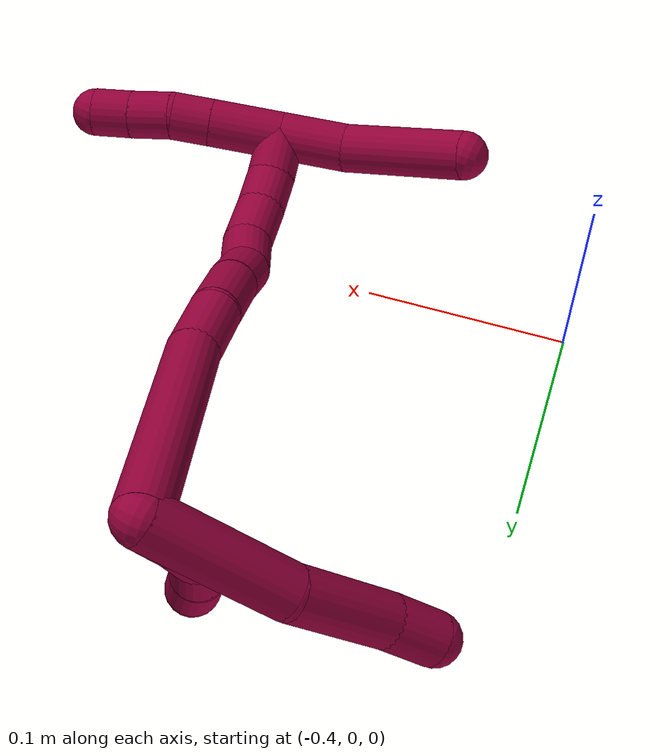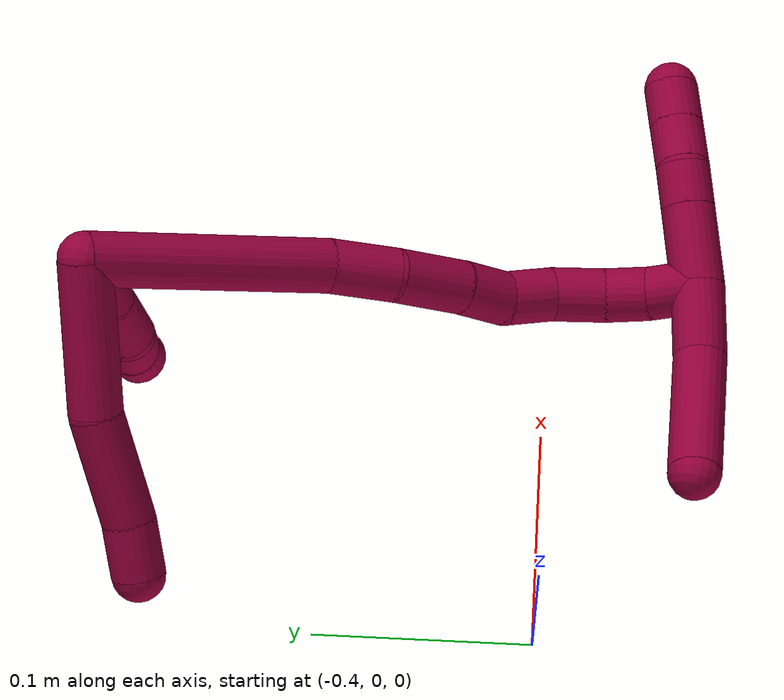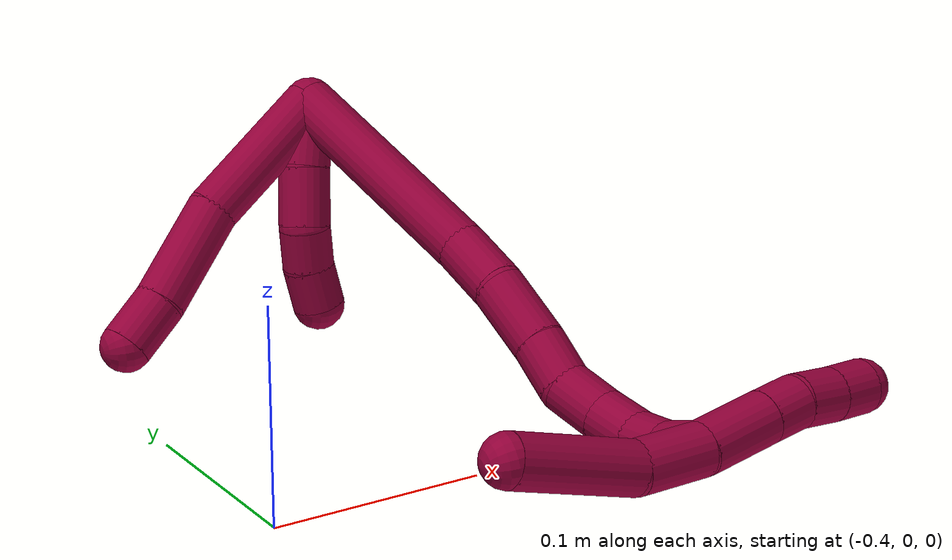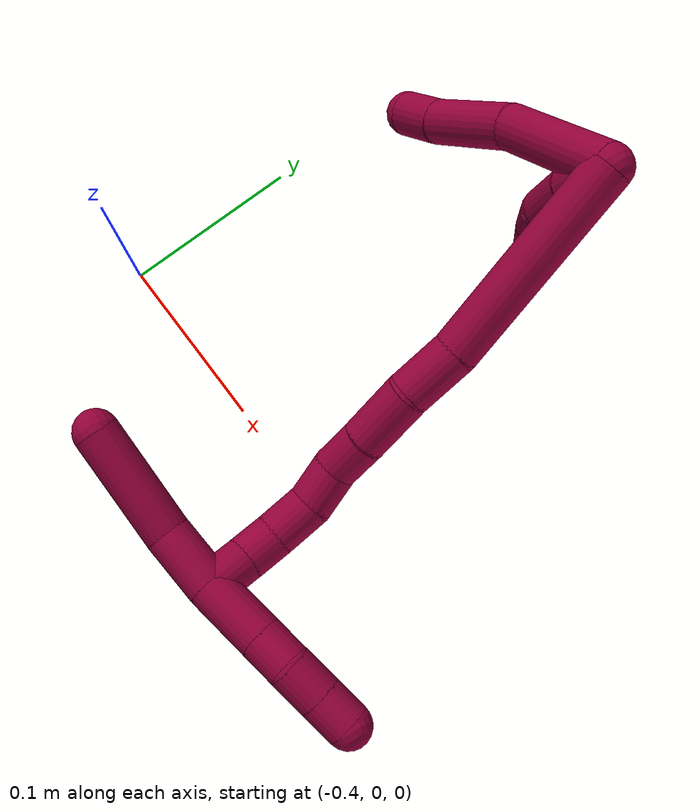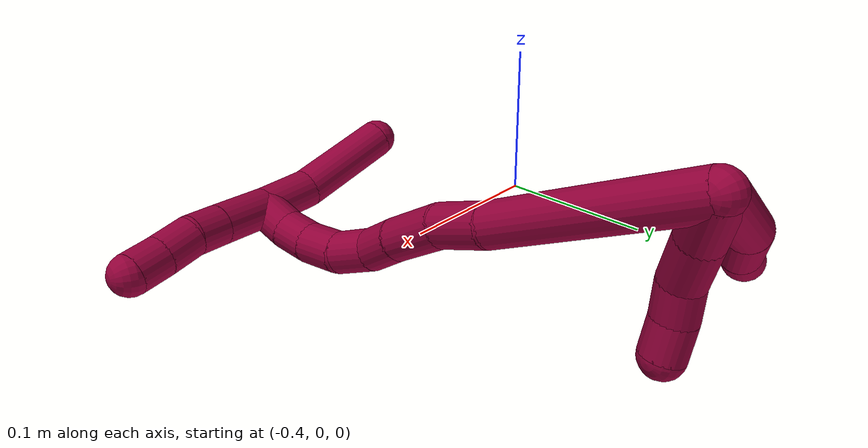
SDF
<sdf version="1.7">
 <world name="default">
  <model name="8">
   <static>0</static>
   <link name="8">
    <collision name="collision-cylinder-e_1_2_8">
     <pose>-0.010175 -0.016772 -0.029622 2.6264 -0.290457 -1.0136</pose>
     <geometry><cylinder><radius>0.0125</radius><length>0.071056</length></cylinder></geometry>
     <surface>
      <friction><ode><mu>1.16</mu><mu2>1.16</mu2><slip1>0</slip1><slip2>0</slip2></ode></friction>
      <contact><ode><kp>1e+06</kp><kd>1</kd><max_vel>0</max_vel><min_depth>0.001</min_depth></ode></contact>
     </surface>
    </collision>
    <visual name="visual-cylinder-e_1_2_8">
     <pose>-0.010175 -0.016772 -0.029622 2.6264 -0.290457 -1.0136</pose>
     <geometry><cylinder><radius>0.0125</radius><length>0.071056</length></cylinder></geometry>
     <material><ambient>0.584314 0 0.227451 1</ambient></material>
    </visual>
    <collision name="collision-cylinder-e_2_8_9">
     <pose>-0.033071 -0.046931 -0.078032 2.52247 -0.503931 -1.35543</pose>
     <geometry><cylinder><radius>0.0125</radius><length>0.052691</length></cylinder></geometry>
     <surface>
      <friction><ode><mu>1.16</mu><mu2>1.16</mu2><slip1>0</slip1><slip2>0</slip2></ode></friction>
      <contact><ode><kp>1e+06</kp><kd>1</kd><max_vel>0</max_vel><min_depth>0.001</min_depth></ode></contact>
     </surface>
    </collision>
    <visual name="visual-cylinder-e_2_8_9">
     <pose>-0.033071 -0.046931 -0.078032 2.52247 -0.503931 -1.35543</pose>
     <geometry><cylinder><radius>0.0125</radius><length>0.052691</length></cylinder></geometry>
     <material><ambient>0.584314 0 0.227451 1</ambient></material>
    </visual>
    <collision name="collision-cylinder-e_3_9_6">
     <pose>-0.050835 -0.066529 -0.107227 2.60364 -0.394287 -1.25407</pose>
     <geometry><cylinder><radius>0.0125</radius><length>0.026253</length></cylinder></geometry>
     <surface>
      <friction><ode><mu>1.16</mu><mu2>1.16</mu2><slip1>0</slip1><slip2>0</slip2></ode></friction>
      <contact><ode><kp>1e+06</kp><kd>1</kd><max_vel>0</max_vel><min_depth>0.001</min_depth></ode></contact>
     </surface>
    </collision>
    <visual name="visual-cylinder-e_3_9_6">
     <pose>-0.050835 -0.066529 -0.107227 2.60364 -0.394287 -1.25407</pose>
     <geometry><cylinder><radius>0.0125</radius><length>0.026253</length></cylinder></geometry>
     <material><ambient>0.584314 0 0.227451 1</ambient></material>
    </visual>
    <collision name="collision-cylinder-e_1_2_10">
     <pose>-0.007486 -0.012441 -0.004935 1.94844 -0.509982 -0.732975</pose>
     <geometry><cylinder><radius>0.0125</radius><length>0.030672</length></cylinder></geometry>
     <surface>
      <friction><ode><mu>1.16</mu><mu2>1.16</mu2><slip1>0</slip1><slip2>0</slip2></ode></friction>
      <contact><ode><kp>1e+06</kp><kd>1</kd><max_vel>0</max_vel><min_depth>0.001</min_depth></ode></contact>
     </surface>
    </collision>
    <visual name="visual-cylinder-e_1_2_10">
     <pose>-0.007486 -0.012441 -0.004935 1.94844 -0.509982 -0.732975</pose>
     <geometry><cylinder><radius>0.0125</radius><length>0.030672</length></cylinder></geometry>
     <material><ambient>0.584314 0 0.227451 1</ambient></material>
    </visual>
    <collision name="collision-cylinder-e_2_10_11">
     <pose>-0.021628 -0.037226 -0.012853 1.8079 -0.482748 -0.606221</pose>
     <geometry><cylinder><radius>0.0125</radius><length>0.028674</length></cylinder></geometry>
     <surface>
      <friction><ode><mu>1.16</mu><mu2>1.16</mu2><slip1>0</slip1><slip2>0</slip2></ode></friction>
      <contact><ode><kp>1e+06</kp><kd>1</kd><max_vel>0</max_vel><min_depth>0.001</min_depth></ode></contact>
     </surface>
    </collision>
    <visual name="visual-cylinder-e_2_10_11">
     <pose>-0.021628 -0.037226 -0.012853 1.8079 -0.482748 -0.606221</pose>
     <geometry><cylinder><radius>0.0125</radius><length>0.028674</length></cylinder></geometry>
     <material><ambient>0.584314 0 0.227451 1</ambient></material>
    </visual>
    <collision name="collision-cylinder-e_3_11_12">
     <pose>-0.030373 -0.059377 -0.016007 1.58824 -0.209826 -0.213491</pose>
     <geometry><cylinder><radius>0.0125</radius><length>0.020059</length></cylinder></geometry>
     <surface>
      <friction><ode><mu>1.16</mu><mu2>1.16</mu2><slip1>0</slip1><slip2>0</slip2></ode></friction>
      <contact><ode><kp>1e+06</kp><kd>1</kd><max_vel>0</max_vel><min_depth>0.001</min_depth></ode></contact>
     </surface>
    </collision>
    <visual name="visual-cylinder-e_3_11_12">
     <pose>-0.030373 -0.059377 -0.016007 1.58824 -0.209826 -0.213491</pose>
     <geometry><cylinder><radius>0.0125</radius><length>0.020059</length></cylinder></geometry>
     <material><ambient>0.584314 0 0.227451 1</ambient></material>
    </visual>
    <collision name="collision-cylinder-e_4_12_5">
     <pose>-0.034913 -0.07909 -0.014793 1.4318 -0.240337 -0.2093</pose>
     <geometry><cylinder><radius>0.0125</radius><length>0.020596</length></cylinder></geometry>
     <surface>
      <friction><ode><mu>1.16</mu><mu2>1.16</mu2><slip1>0</slip1><slip2>0</slip2></ode></friction>
      <contact><ode><kp>1e+06</kp><kd>1</kd><max_vel>0</max_vel><min_depth>0.001</min_depth></ode></contact>
     </surface>
    </collision>
    <visual name="visual-cylinder-e_4_12_5">
     <pose>-0.034913 -0.07909 -0.014793 1.4318 -0.240337 -0.2093</pose>
     <geometry><cylinder><radius>0.0125</radius><length>0.020596</length></cylinder></geometry>
     <material><ambient>0.584314 0 0.227451 1</ambient></material>
    </visual>
    <collision name="collision-cylinder-e_1_2_13">
     <pose>-0.054607 -0.013592 0.01484 0.741518 -1.21772 -0.529357</pose>
     <geometry><cylinder><radius>0.0125</radius><length>0.116393</length></cylinder></geometry>
     <surface>
      <friction><ode><mu>1.16</mu><mu2>1.16</mu2><slip1>0</slip1><slip2>0</slip2></ode></friction>
      <contact><ode><kp>1e+06</kp><kd>1</kd><max_vel>0</max_vel><min_depth>0.001</min_depth></ode></contact>
     </surface>
    </collision>
    <visual name="visual-cylinder-e_1_2_13">
     <pose>-0.054607 -0.013592 0.01484 0.741518 -1.21772 -0.529357</pose>
     <geometry><cylinder><radius>0.0125</radius><length>0.116393</length></cylinder></geometry>
     <material><ambient>0.584314 0 0.227451 1</ambient></material>
    </visual>
    <collision name="collision-cylinder-e_2_13_14">
     <pose>-0.124808 -0.02964 0.031712 0.879772 -1.36913 -0.733547</pose>
     <geometry><cylinder><radius>0.0125</radius><length>0.031833</length></cylinder></geometry>
     <surface>
      <friction><ode><mu>1.16</mu><mu2>1.16</mu2><slip1>0</slip1><slip2>0</slip2></ode></friction>
      <contact><ode><kp>1e+06</kp><kd>1</kd><max_vel>0</max_vel><min_depth>0.001</min_depth></ode></contact>
     </surface>
    </collision>
    <visual name="visual-cylinder-e_2_13_14">
     <pose>-0.124808 -0.02964 0.031712 0.879772 -1.36913 -0.733547</pose>
     <geometry><cylinder><radius>0.0125</radius><length>0.031833</length></cylinder></geometry>
     <material><ambient>0.584314 0 0.227451 1</ambient></material>
    </visual>
    <collision name="collision-cylinder-e_3_14_15">
     <pose>-0.156505 -0.038428 0.036301 1.18697 -1.16972 -0.840193</pose>
     <geometry><cylinder><radius>0.0125</radius><length>0.034983</length></cylinder></geometry>
     <surface>
      <friction><ode><mu>1.16</mu><mu2>1.16</mu2><slip1>0</slip1><slip2>0</slip2></ode></friction>
      <contact><ode><kp>1e+06</kp><kd>1</kd><max_vel>0</max_vel><min_depth>0.001</min_depth></ode></contact>
     </surface>
    </collision>
    <visual name="visual-cylinder-e_3_14_15">
     <pose>-0.156505 -0.038428 0.036301 1.18697 -1.16972 -0.840193</pose>
     <geometry><cylinder><radius>0.0125</radius><length>0.034983</length></cylinder></geometry>
     <material><ambient>0.584314 0 0.227451 1</ambient></material>
    </visual>
    <collision name="collision-cylinder-e_4_15_16">
     <pose>-0.183495 -0.049737 0.039963 1.35222 -1.13283 -0.943494</pose>
     <geometry><cylinder><radius>0.0125</radius><length>0.024042</length></cylinder></geometry>
     <surface>
      <friction><ode><mu>1.16</mu><mu2>1.16</mu2><slip1>0</slip1><slip2>0</slip2></ode></friction>
      <contact><ode><kp>1e+06</kp><kd>1</kd><max_vel>0</max_vel><min_depth>0.001</min_depth></ode></contact>
     </surface>
    </collision>
    <visual name="visual-cylinder-e_4_15_16">
     <pose>-0.183495 -0.049737 0.039963 1.35222 -1.13283 -0.943494</pose>
     <geometry><cylinder><radius>0.0125</radius><length>0.024042</length></cylinder></geometry>
     <material><ambient>0.584314 0 0.227451 1</ambient></material>
    </visual>
    <collision name="collision-cylinder-e_5_16_17">
     <pose>-0.205373 -0.05691 0.045268 0.48189 -1.16374 -0.320518</pose>
     <geometry><cylinder><radius>0.0125</radius><length>0.02394</length></cylinder></geometry>
     <surface>
      <friction><ode><mu>1.16</mu><mu2>1.16</mu2><slip1>0</slip1><slip2>0</slip2></ode></friction>
      <contact><ode><kp>1e+06</kp><kd>1</kd><max_vel>0</max_vel><min_depth>0.001</min_depth></ode></contact>
     </surface>
    </collision>
    <visual name="visual-cylinder-e_5_16_17">
     <pose>-0.205373 -0.05691 0.045268 0.48189 -1.16374 -0.320518</pose>
     <geometry><cylinder><radius>0.0125</radius><length>0.02394</length></cylinder></geometry>
     <material><ambient>0.584314 0 0.227451 1</ambient></material>
    </visual>
    <collision name="collision-cylinder-e_6_17_18">
     <pose>-0.228659 -0.058004 0.051662 -0.465605 -1.37367 0.384068</pose>
     <geometry><cylinder><radius>0.0125</radius><length>0.025075</length></cylinder></geometry>
     <surface>
      <friction><ode><mu>1.16</mu><mu2>1.16</mu2><slip1>0</slip1><slip2>0</slip2></ode></friction>
      <contact><ode><kp>1e+06</kp><kd>1</kd><max_vel>0</max_vel><min_depth>0.001</min_depth></ode></contact>
     </surface>
    </collision>
    <visual name="visual-cylinder-e_6_17_18">
     <pose>-0.228659 -0.058004 0.051662 -0.465605 -1.37367 0.384068</pose>
     <geometry><cylinder><radius>0.0125</radius><length>0.025075</length></cylinder></geometry>
     <material><ambient>0.584314 0 0.227451 1</ambient></material>
    </visual>
    <collision name="collision-cylinder-e_7_18_19">
     <pose>-0.25055 -0.054041 0.055724 -0.99219 -1.22873 0.729461</pose>
     <geometry><cylinder><radius>0.0125</radius><length>0.020374</length></cylinder></geometry>
     <surface>
      <friction><ode><mu>1.16</mu><mu2>1.16</mu2><slip1>0</slip1><slip2>0</slip2></ode></friction>
      <contact><ode><kp>1e+06</kp><kd>1</kd><max_vel>0</max_vel><min_depth>0.001</min_depth></ode></contact>
     </surface>
    </collision>
    <visual name="visual-cylinder-e_7_18_19">
     <pose>-0.25055 -0.054041 0.055724 -0.99219 -1.22873 0.729461</pose>
     <geometry><cylinder><radius>0.0125</radius><length>0.020374</length></cylinder></geometry>
     <material><ambient>0.584314 0 0.227451 1</ambient></material>
    </visual>
    <collision name="collision-cylinder-e_8_19_1">
     <pose>-0.269993 -0.045372 0.05999 -1.1793 -1.00279 0.702977</pose>
     <geometry><cylinder><radius>0.0125</radius><length>0.023361</length></cylinder></geometry>
     <surface>
      <friction><ode><mu>1.16</mu><mu2>1.16</mu2><slip1>0</slip1><slip2>0</slip2></ode></friction>
      <contact><ode><kp>1e+06</kp><kd>1</kd><max_vel>0</max_vel><min_depth>0.001</min_depth></ode></contact>
     </surface>
    </collision>
    <visual name="visual-cylinder-e_8_19_1">
     <pose>-0.269993 -0.045372 0.05999 -1.1793 -1.00279 0.702977</pose>
     <geometry><cylinder><radius>0.0125</radius><length>0.023361</length></cylinder></geometry>
     <material><ambient>0.584314 0 0.227451 1</ambient></material>
    </visual>
    <collision name="collision-cylinder-e_1_1_20">
     <pose>-0.274677 -0.040138 0.080483 0.0317 0.277776 0.004432</pose>
     <geometry><cylinder><radius>0.0125</radius><length>0.037652</length></cylinder></geometry>
     <surface>
      <friction><ode><mu>1.16</mu><mu2>1.16</mu2><slip1>0</slip1><slip2>0</slip2></ode></friction>
      <contact><ode><kp>1e+06</kp><kd>1</kd><max_vel>0</max_vel><min_depth>0.001</min_depth></ode></contact>
     </surface>
    </collision>
    <visual name="visual-cylinder-e_1_1_20">
     <pose>-0.274677 -0.040138 0.080483 0.0317 0.277776 0.004432</pose>
     <geometry><cylinder><radius>0.0125</radius><length>0.037652</length></cylinder></geometry>
     <material><ambient>0.584314 0 0.227451 1</ambient></material>
    </visual>
    <collision name="collision-cylinder-e_2_20_21">
     <pose>-0.266744 -0.041127 0.10834 0.042572 0.276303 0.00592</pose>
     <geometry><cylinder><radius>0.0125</radius><length>0.020312</length></cylinder></geometry>
     <surface>
      <friction><ode><mu>1.16</mu><mu2>1.16</mu2><slip1>0</slip1><slip2>0</slip2></ode></friction>
      <contact><ode><kp>1e+06</kp><kd>1</kd><max_vel>0</max_vel><min_depth>0.001</min_depth></ode></contact>
     </surface>
    </collision>
    <visual name="visual-cylinder-e_2_20_21">
     <pose>-0.266744 -0.041127 0.10834 0.042572 0.276303 0.00592</pose>
     <geometry><cylinder><radius>0.0125</radius><length>0.020312</length></cylinder></geometry>
     <material><ambient>0.584314 0 0.227451 1</ambient></material>
    </visual>
    <collision name="collision-cylinder-e_3_21_22">
     <pose>-0.261475 -0.044354 0.128457 0.265049 0.228773 0.030628</pose>
     <geometry><cylinder><radius>0.0125</radius><length>0.022033</length></cylinder></geometry>
     <surface>
      <friction><ode><mu>1.16</mu><mu2>1.16</mu2><slip1>0</slip1><slip2>0</slip2></ode></friction>
      <contact><ode><kp>1e+06</kp><kd>1</kd><max_vel>0</max_vel><min_depth>0.001</min_depth></ode></contact>
     </surface>
    </collision>
    <visual name="visual-cylinder-e_3_21_22">
     <pose>-0.261475 -0.044354 0.128457 0.265049 0.228773 0.030628</pose>
     <geometry><cylinder><radius>0.0125</radius><length>0.022033</length></cylinder></geometry>
     <material><ambient>0.584314 0 0.227451 1</ambient></material>
    </visual>
    <collision name="collision-cylinder-e_4_22_4">
     <pose>-0.256549 -0.049179 0.148303 0.209129 0.245161 0.025857</pose>
     <geometry><cylinder><radius>0.0125</radius><length>0.020003</length></cylinder></geometry>
     <surface>
      <friction><ode><mu>1.16</mu><mu2>1.16</mu2><slip1>0</slip1><slip2>0</slip2></ode></friction>
      <contact><ode><kp>1e+06</kp><kd>1</kd><max_vel>0</max_vel><min_depth>0.001</min_depth></ode></contact>
     </surface>
    </collision>
    <visual name="visual-cylinder-e_4_22_4">
     <pose>-0.256549 -0.049179 0.148303 0.209129 0.245161 0.025857</pose>
     <geometry><cylinder><radius>0.0125</radius><length>0.020003</length></cylinder></geometry>
     <material><ambient>0.584314 0 0.227451 1</ambient></material>
    </visual>
    <collision name="collision-cylinder-e_1_1_23">
     <pose>-0.282653 -0.037334 0.045021 -3.01389 -0.159314 1.79096</pose>
     <geometry><cylinder><radius>0.0125</radius><length>0.035469</length></cylinder></geometry>
     <surface>
      <friction><ode><mu>1.16</mu><mu2>1.16</mu2><slip1>0</slip1><slip2>0</slip2></ode></friction>
      <contact><ode><kp>1e+06</kp><kd>1</kd><max_vel>0</max_vel><min_depth>0.001</min_depth></ode></contact>
     </surface>
    </collision>
    <visual name="visual-cylinder-e_1_1_23">
     <pose>-0.282653 -0.037334 0.045021 -3.01389 -0.159314 1.79096</pose>
     <geometry><cylinder><radius>0.0125</radius><length>0.035469</length></cylinder></geometry>
     <material><ambient>0.584314 0 0.227451 1</ambient></material>
    </visual>
    <collision name="collision-cylinder-e_2_23_3">
     <pose>-0.286259 -0.023351 -0.002385 -2.76862 -0.02458 0.130095</pose>
     <geometry><cylinder><radius>0.0125</radius><length>0.064531</length></cylinder></geometry>
     <surface>
      <friction><ode><mu>1.16</mu><mu2>1.16</mu2><slip1>0</slip1><slip2>0</slip2></ode></friction>
      <contact><ode><kp>1e+06</kp><kd>1</kd><max_vel>0</max_vel><min_depth>0.001</min_depth></ode></contact>
     </surface>
    </collision>
    <visual name="visual-cylinder-e_2_23_3">
     <pose>-0.286259 -0.023351 -0.002385 -2.76862 -0.02458 0.130095</pose>
     <geometry><cylinder><radius>0.0125</radius><length>0.064531</length></cylinder></geometry>
     <material><ambient>0.584314 0 0.227451 1</ambient></material>
    </visual>
    <collision name="collision-sphere-3">
     <pose>-0.287052 -0.011597 -0.032423 0 -0 0</pose>
     <geometry><sphere><radius>0.0125</radius></sphere></geometry>
     <surface>
      <friction><ode><mu>1.16</mu><mu2>1.16</mu2><slip1>0</slip1><slip2>0</slip2></ode></friction>
      <contact><ode><kp>1e+06</kp><kd>1</kd><max_vel>0</max_vel><min_depth>0.001</min_depth></ode></contact>
     </surface>
    </collision>
    <visual name="visual-sphere-3">
     <pose>-0.287052 -0.011597 -0.032423 0 -0 0</pose>
     <geometry><sphere><radius>0.0125</radius></sphere></geometry>
     <material><ambient>0.584314 0 0.227451 1</ambient></material>
    </visual>
    <collision name="collision-sphere-23">
     <pose>-0.285466 -0.035104 0.027654 0 -0 0</pose>
     <geometry><sphere><radius>0.0125</radius></sphere></geometry>
     <surface>
      <friction><ode><mu>1.16</mu><mu2>1.16</mu2><slip1>0</slip1><slip2>0</slip2></ode></friction>
      <contact><ode><kp>1e+06</kp><kd>1</kd><max_vel>0</max_vel><min_depth>0.001</min_depth></ode></contact>
     </surface>
    </collision>
    <visual name="visual-sphere-23">
     <pose>-0.285466 -0.035104 0.027654 0 -0 0</pose>
     <geometry><sphere><radius>0.0125</radius></sphere></geometry>
     <material><ambient>0.584314 0 0.227451 1</ambient></material>
    </visual>
    <collision name="collision-sphere-4">
     <pose>-0.254122 -0.051193 0.157794 0 -0 0</pose>
     <geometry><sphere><radius>0.0125</radius></sphere></geometry>
     <surface>
      <friction><ode><mu>1.16</mu><mu2>1.16</mu2><slip1>0</slip1><slip2>0</slip2></ode></friction>
      <contact><ode><kp>1e+06</kp><kd>1</kd><max_vel>0</max_vel><min_depth>0.001</min_depth></ode></contact>
     </surface>
    </collision>
    <visual name="visual-sphere-4">
     <pose>-0.254122 -0.051193 0.157794 0 -0 0</pose>
     <geometry><sphere><radius>0.0125</radius></sphere></geometry>
     <material><ambient>0.584314 0 0.227451 1</ambient></material>
    </visual>
    <collision name="collision-sphere-22">
     <pose>-0.258977 -0.047165 0.138812 0 -0 0</pose>
     <geometry><sphere><radius>0.0125</radius></sphere></geometry>
     <surface>
      <friction><ode><mu>1.16</mu><mu2>1.16</mu2><slip1>0</slip1><slip2>0</slip2></ode></friction>
      <contact><ode><kp>1e+06</kp><kd>1</kd><max_vel>0</max_vel><min_depth>0.001</min_depth></ode></contact>
     </surface>
    </collision>
    <visual name="visual-sphere-22">
     <pose>-0.258977 -0.047165 0.138812 0 -0 0</pose>
     <geometry><sphere><radius>0.0125</radius></sphere></geometry>
     <material><ambient>0.584314 0 0.227451 1</ambient></material>
    </visual>
    <collision name="collision-sphere-21">
     <pose>-0.263973 -0.041543 0.118103 0 -0 0</pose>
     <geometry><sphere><radius>0.0125</radius></sphere></geometry>
     <surface>
      <friction><ode><mu>1.16</mu><mu2>1.16</mu2><slip1>0</slip1><slip2>0</slip2></ode></friction>
      <contact><ode><kp>1e+06</kp><kd>1</kd><max_vel>0</max_vel><min_depth>0.001</min_depth></ode></contact>
     </surface>
    </collision>
    <visual name="visual-sphere-21">
     <pose>-0.263973 -0.041543 0.118103 0 -0 0</pose>
     <geometry><sphere><radius>0.0125</radius></sphere></geometry>
     <material><ambient>0.584314 0 0.227451 1</ambient></material>
    </visual>
    <collision name="collision-sphere-20">
     <pose>-0.269515 -0.040712 0.098578 0 -0 0</pose>
     <geometry><sphere><radius>0.0125</radius></sphere></geometry>
     <surface>
      <friction><ode><mu>1.16</mu><mu2>1.16</mu2><slip1>0</slip1><slip2>0</slip2></ode></friction>
      <contact><ode><kp>1e+06</kp><kd>1</kd><max_vel>0</max_vel><min_depth>0.001</min_depth></ode></contact>
     </surface>
    </collision>
    <visual name="visual-sphere-20">
     <pose>-0.269515 -0.040712 0.098578 0 -0 0</pose>
     <geometry><sphere><radius>0.0125</radius></sphere></geometry>
     <material><ambient>0.584314 0 0.227451 1</ambient></material>
    </visual>
    <collision name="collision-sphere-11">
     <pose>-0.028284 -0.049569 -0.015836 0 -0 0</pose>
     <geometry><sphere><radius>0.0125</radius></sphere></geometry>
     <surface>
      <friction><ode><mu>1.16</mu><mu2>1.16</mu2><slip1>0</slip1><slip2>0</slip2></ode></friction>
      <contact><ode><kp>1e+06</kp><kd>1</kd><max_vel>0</max_vel><min_depth>0.001</min_depth></ode></contact>
     </surface>
    </collision>
    <visual name="visual-sphere-11">
     <pose>-0.028284 -0.049569 -0.015836 0 -0 0</pose>
     <geometry><sphere><radius>0.0125</radius></sphere></geometry>
     <material><ambient>0.584314 0 0.227451 1</ambient></material>
    </visual>
    <collision name="collision-sphere-10">
     <pose>-0.014973 -0.024883 -0.009871 0 -0 0</pose>
     <geometry><sphere><radius>0.0125</radius></sphere></geometry>
     <surface>
      <friction><ode><mu>1.16</mu><mu2>1.16</mu2><slip1>0</slip1><slip2>0</slip2></ode></friction>
      <contact><ode><kp>1e+06</kp><kd>1</kd><max_vel>0</max_vel><min_depth>0.001</min_depth></ode></contact>
     </surface>
    </collision>
    <visual name="visual-sphere-10">
     <pose>-0.014973 -0.024883 -0.009871 0 -0 0</pose>
     <geometry><sphere><radius>0.0125</radius></sphere></geometry>
     <material><ambient>0.584314 0 0.227451 1</ambient></material>
    </visual>
    <collision name="collision-sphere-6">
     <pose>-0.055878 -0.072739 -0.117635 0 -0 0</pose>
     <geometry><sphere><radius>0.0125</radius></sphere></geometry>
     <surface>
      <friction><ode><mu>1.16</mu><mu2>1.16</mu2><slip1>0</slip1><slip2>0</slip2></ode></friction>
      <contact><ode><kp>1e+06</kp><kd>1</kd><max_vel>0</max_vel><min_depth>0.001</min_depth></ode></contact>
     </surface>
    </collision>
    <visual name="visual-sphere-6">
     <pose>-0.055878 -0.072739 -0.117635 0 -0 0</pose>
     <geometry><sphere><radius>0.0125</radius></sphere></geometry>
     <material><ambient>0.584314 0 0.227451 1</ambient></material>
    </visual>
    <collision name="collision-sphere-9">
     <pose>-0.045793 -0.06032 -0.09682 0 -0 0</pose>
     <geometry><sphere><radius>0.0125</radius></sphere></geometry>
     <surface>
      <friction><ode><mu>1.16</mu><mu2>1.16</mu2><slip1>0</slip1><slip2>0</slip2></ode></friction>
      <contact><ode><kp>1e+06</kp><kd>1</kd><max_vel>0</max_vel><min_depth>0.001</min_depth></ode></contact>
     </surface>
    </collision>
    <visual name="visual-sphere-9">
     <pose>-0.045793 -0.06032 -0.09682 0 -0 0</pose>
     <geometry><sphere><radius>0.0125</radius></sphere></geometry>
     <material><ambient>0.584314 0 0.227451 1</ambient></material>
    </visual>
    <collision name="collision-sphere-2">
     <geometry><sphere><radius>0.0125</radius></sphere></geometry>
     <surface>
      <friction><ode><mu>1.16</mu><mu2>1.16</mu2><slip1>0</slip1><slip2>0</slip2></ode></friction>
      <contact><ode><kp>1e+06</kp><kd>1</kd><max_vel>0</max_vel><min_depth>0.001</min_depth></ode></contact>
     </surface>
    </collision>
    <visual name="visual-sphere-2">
     <geometry><sphere><radius>0.0125</radius></sphere></geometry>
     <material><ambient>0.584314 0 0.227451 1</ambient></material>
    </visual>
    <collision name="collision-sphere-19">
     <pose>-0.260147 -0.05118 0.057593 0 -0 0</pose>
     <geometry><sphere><radius>0.0125</radius></sphere></geometry>
     <surface>
      <friction><ode><mu>1.16</mu><mu2>1.16</mu2><slip1>0</slip1><slip2>0</slip2></ode></friction>
      <contact><ode><kp>1e+06</kp><kd>1</kd><max_vel>0</max_vel><min_depth>0.001</min_depth></ode></contact>
     </surface>
    </collision>
    <visual name="visual-sphere-19">
     <pose>-0.260147 -0.05118 0.057593 0 -0 0</pose>
     <geometry><sphere><radius>0.0125</radius></sphere></geometry>
     <material><ambient>0.584314 0 0.227451 1</ambient></material>
    </visual>
    <collision name="collision-sphere-8">
     <pose>-0.02035 -0.033543 -0.059243 0 -0 0</pose>
     <geometry><sphere><radius>0.0125</radius></sphere></geometry>
     <surface>
      <friction><ode><mu>1.16</mu><mu2>1.16</mu2><slip1>0</slip1><slip2>0</slip2></ode></friction>
      <contact><ode><kp>1e+06</kp><kd>1</kd><max_vel>0</max_vel><min_depth>0.001</min_depth></ode></contact>
     </surface>
    </collision>
    <visual name="visual-sphere-8">
     <pose>-0.02035 -0.033543 -0.059243 0 -0 0</pose>
     <geometry><sphere><radius>0.0125</radius></sphere></geometry>
     <material><ambient>0.584314 0 0.227451 1</ambient></material>
    </visual>
    <collision name="collision-sphere-12">
     <pose>-0.032462 -0.069185 -0.016179 0 -0 0</pose>
     <geometry><sphere><radius>0.0125</radius></sphere></geometry>
     <surface>
      <friction><ode><mu>1.16</mu><mu2>1.16</mu2><slip1>0</slip1><slip2>0</slip2></ode></friction>
      <contact><ode><kp>1e+06</kp><kd>1</kd><max_vel>0</max_vel><min_depth>0.001</min_depth></ode></contact>
     </surface>
    </collision>
    <visual name="visual-sphere-12">
     <pose>-0.032462 -0.069185 -0.016179 0 -0 0</pose>
     <geometry><sphere><radius>0.0125</radius></sphere></geometry>
     <material><ambient>0.584314 0 0.227451 1</ambient></material>
    </visual>
    <collision name="collision-sphere-5">
     <pose>-0.037364 -0.088996 -0.013407 0 -0 0</pose>
     <geometry><sphere><radius>0.0125</radius></sphere></geometry>
     <surface>
      <friction><ode><mu>1.16</mu><mu2>1.16</mu2><slip1>0</slip1><slip2>0</slip2></ode></friction>
      <contact><ode><kp>1e+06</kp><kd>1</kd><max_vel>0</max_vel><min_depth>0.001</min_depth></ode></contact>
     </surface>
    </collision>
    <visual name="visual-sphere-5">
     <pose>-0.037364 -0.088996 -0.013407 0 -0 0</pose>
     <geometry><sphere><radius>0.0125</radius></sphere></geometry>
     <material><ambient>0.584314 0 0.227451 1</ambient></material>
    </visual>
    <collision name="collision-sphere-13">
     <pose>-0.109214 -0.027183 0.02968 0 -0 0</pose>
     <geometry><sphere><radius>0.0125</radius></sphere></geometry>
     <surface>
      <friction><ode><mu>1.16</mu><mu2>1.16</mu2><slip1>0</slip1><slip2>0</slip2></ode></friction>
      <contact><ode><kp>1e+06</kp><kd>1</kd><max_vel>0</max_vel><min_depth>0.001</min_depth></ode></contact>
     </surface>
    </collision>
    <visual name="visual-sphere-13">
     <pose>-0.109214 -0.027183 0.02968 0 -0 0</pose>
     <geometry><sphere><radius>0.0125</radius></sphere></geometry>
     <material><ambient>0.584314 0 0.227451 1</ambient></material>
    </visual>
    <collision name="collision-sphere-14">
     <pose>-0.140402 -0.032097 0.033744 0 -0 0</pose>
     <geometry><sphere><radius>0.0125</radius></sphere></geometry>
     <surface>
      <friction><ode><mu>1.16</mu><mu2>1.16</mu2><slip1>0</slip1><slip2>0</slip2></ode></friction>
      <contact><ode><kp>1e+06</kp><kd>1</kd><max_vel>0</max_vel><min_depth>0.001</min_depth></ode></contact>
     </surface>
    </collision>
    <visual name="visual-sphere-14">
     <pose>-0.140402 -0.032097 0.033744 0 -0 0</pose>
     <geometry><sphere><radius>0.0125</radius></sphere></geometry>
     <material><ambient>0.584314 0 0.227451 1</ambient></material>
    </visual>
    <collision name="collision-sphere-15">
     <pose>-0.172608 -0.04476 0.038858 0 -0 0</pose>
     <geometry><sphere><radius>0.0125</radius></sphere></geometry>
     <surface>
      <friction><ode><mu>1.16</mu><mu2>1.16</mu2><slip1>0</slip1><slip2>0</slip2></ode></friction>
      <contact><ode><kp>1e+06</kp><kd>1</kd><max_vel>0</max_vel><min_depth>0.001</min_depth></ode></contact>
     </surface>
    </collision>
    <visual name="visual-sphere-15">
     <pose>-0.172608 -0.04476 0.038858 0 -0 0</pose>
     <geometry><sphere><radius>0.0125</radius></sphere></geometry>
     <material><ambient>0.584314 0 0.227451 1</ambient></material>
    </visual>
    <collision name="collision-sphere-16">
     <pose>-0.194381 -0.054714 0.041069 0 -0 0</pose>
     <geometry><sphere><radius>0.0125</radius></sphere></geometry>
     <surface>
      <friction><ode><mu>1.16</mu><mu2>1.16</mu2><slip1>0</slip1><slip2>0</slip2></ode></friction>
      <contact><ode><kp>1e+06</kp><kd>1</kd><max_vel>0</max_vel><min_depth>0.001</min_depth></ode></contact>
     </surface>
    </collision>
    <visual name="visual-sphere-16">
     <pose>-0.194381 -0.054714 0.041069 0 -0 0</pose>
     <geometry><sphere><radius>0.0125</radius></sphere></geometry>
     <material><ambient>0.584314 0 0.227451 1</ambient></material>
    </visual>
    <collision name="collision-sphere-17">
     <pose>-0.216365 -0.059107 0.049468 0 -0 0</pose>
     <geometry><sphere><radius>0.0125</radius></sphere></geometry>
     <surface>
      <friction><ode><mu>1.16</mu><mu2>1.16</mu2><slip1>0</slip1><slip2>0</slip2></ode></friction>
      <contact><ode><kp>1e+06</kp><kd>1</kd><max_vel>0</max_vel><min_depth>0.001</min_depth></ode></contact>
     </surface>
    </collision>
    <visual name="visual-sphere-17">
     <pose>-0.216365 -0.059107 0.049468 0 -0 0</pose>
     <geometry><sphere><radius>0.0125</radius></sphere></geometry>
     <material><ambient>0.584314 0 0.227451 1</ambient></material>
    </visual>
    <collision name="collision-sphere-18">
     <pose>-0.240954 -0.056902 0.053856 0 -0 0</pose>
     <geometry><sphere><radius>0.0125</radius></sphere></geometry>
     <surface>
      <friction><ode><mu>1.16</mu><mu2>1.16</mu2><slip1>0</slip1><slip2>0</slip2></ode></friction>
      <contact><ode><kp>1e+06</kp><kd>1</kd><max_vel>0</max_vel><min_depth>0.001</min_depth></ode></contact>
     </surface>
    </collision>
    <visual name="visual-sphere-18">
     <pose>-0.240954 -0.056902 0.053856 0 -0 0</pose>
     <geometry><sphere><radius>0.0125</radius></sphere></geometry>
     <material><ambient>0.584314 0 0.227451 1</ambient></material>
    </visual>
    <collision name="collision-sphere-1">
     <pose>-0.279839 -0.039564 0.062388 0 -0 0</pose>
     <geometry><sphere><radius>0.0125</radius></sphere></geometry>
     <surface>
      <friction><ode><mu>1.16</mu><mu2>1.16</mu2><slip1>0</slip1><slip2>0</slip2></ode></friction>
      <contact><ode><kp>1e+06</kp><kd>1</kd><max_vel>0</max_vel><min_depth>0.001</min_depth></ode></contact>
     </surface>
    </collision>
    <visual name="visual-sphere-1">
     <pose>-0.279839 -0.039564 0.062388 0 -0 0</pose>
     <geometry><sphere><radius>0.0125</radius></sphere></geometry>
     <material><ambient>0.584314 0 0.227451 1</ambient></material>
    </visual>
    <inertial>
     <pose>-0.137876 -0.035816 0.016236 0 -0 0</pose>
     <mass>0.75</mass>
     <inertia><ixx>1.6e-05</ixx><ixy>0</ixy><ixz>0</ixz><iyy>5e-05</iyy><iyz>0</iyz><izz>0.000217</izz></inertia>
    </inertial>
   </link>
   <pose>-0.265894 0.205385 0.1075 1.48583 -0.186999 1.45921</pose>
  </model>
 </world>
</sdf>
